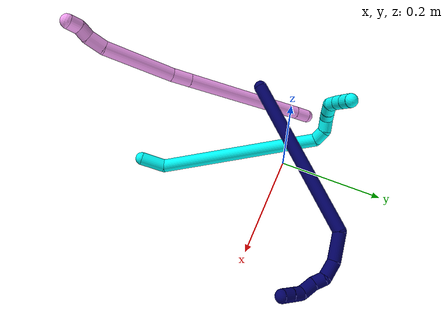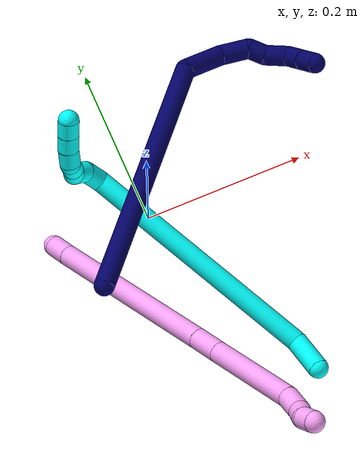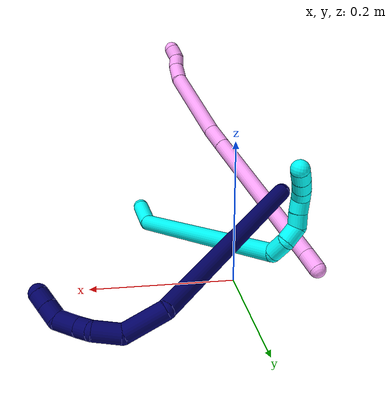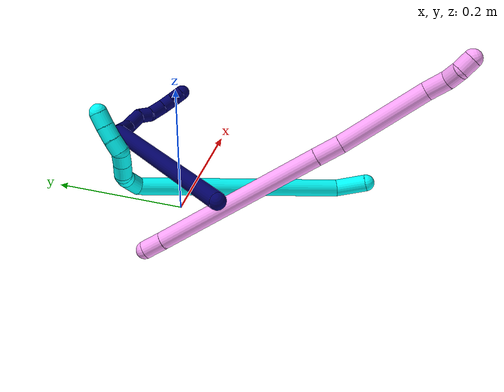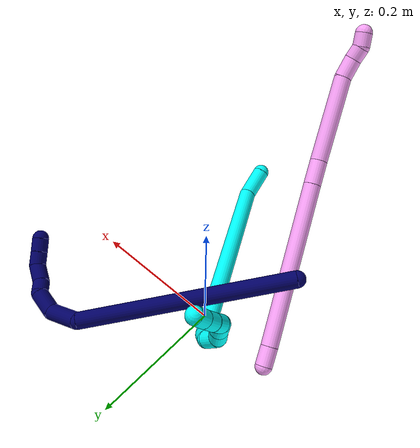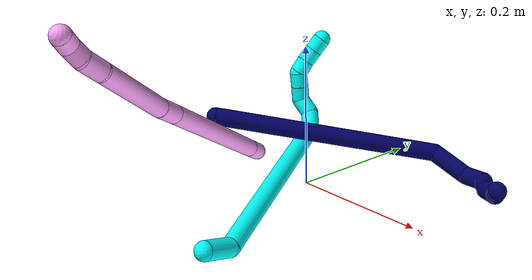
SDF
<sdf version="1.7">
 <world name="default">
  <model name="photoneo_s_sensor">
   <static>1</static>
   <pose>0 0 2 1.57079 1.57079 3.14159</pose>
   <link name="link">
    <inertial><mass>0.1</mass></inertial>
    <sensor name="sensor" type="depth">
     <update_rate>30</update_rate>
     <camera>
      <horizontal_fov>1.22</horizontal_fov>
      <image><width>1920</width><height>1200</height><format>B8G8R8</format></image>
      <clip><near>0.1</near><far>4</far></clip>
      <depth_camera><output>points</output></depth_camera>
     </camera>
     <plugin name="camera_plugin" filename="libgazebo_ros_depth_camera.so">
      <baseline>0.2</baseline>
      <alwaysOn>1</alwaysOn>
      <updateRate>0.0</updateRate>
      <cameraName>camera_ir</cameraName>
      <imageTopicName>/camera/color/image_raw</imageTopicName>
      <cameraInfoTopicName>/camera/color/camera_info</cameraInfoTopicName>
      <depthImageTopicName>/camera/depth/image_raw</depthImageTopicName>
      <depthImageCameraInfoTopicName>/camera/depth/camera_info</depthImageCameraInfoTopicName>
      <pointCloudTopicName>/camera/depth/points</pointCloudTopicName>
      <frameName>fr_optical</frameName>
      <pointCloudCutoff>0.1</pointCloudCutoff>
      <pointCloudCutoffMax>2.0</pointCloudCutoffMax>
      <distortionK1>0</distortionK1>
      <distortionK2>0</distortionK2>
      <distortionK3>0</distortionK3>
      <distortionT1>0</distortionT1>
      <distortionT2>0</distortionT2>
      <CxPrime>0</CxPrime>
      <Cx>0</Cx>
      <Cy>0</Cy>
      <focalLength>0</focalLength>
      <hackBaseline>0</hackBaseline>
     </plugin>
    </sensor>
   </link>
  </model>
  <model name="bin">
   <static>1</static>
   <link name="bottom">
    <collision name="collision-bottom">
     <pose>0 0 -0.01 0 -0 0</pose>
     <geometry><box><size>0.8 0.6 0.02</size></box></geometry>
     <surface>
      <friction><ode><mu>100</mu><mu2>100</mu2></ode></friction>
      <contact><collide_bitmask>65535</collide_bitmask></contact>
     </surface>
    </collision>
   </link>
   <link name="west_wall">
    <collision name="collision-west_wall">
     <pose>-0.41 0 0.1 0 -0 0</pose>
     <geometry><box><size>0.02 0.6 0.2</size></box></geometry>
     <surface>
      <friction><ode><mu>100</mu><mu2>100</mu2></ode></friction>
      <contact><collide_bitmask>65535</collide_bitmask></contact>
     </surface>
    </collision>
   </link>
   <link name="east_wall">
    <collision name="collision-east_wall">
     <pose>0.41 0 0.1 0 -0 0</pose>
     <geometry><box><size>0.02 0.6 0.2</size></box></geometry>
     <surface>
      <friction><ode><mu>100</mu><mu2>100</mu2></ode></friction>
      <contact><collide_bitmask>65535</collide_bitmask></contact>
     </surface>
    </collision>
   </link>
   <link name="south_wall">
    <collision name="collision-south_wall">
     <pose>0 -0.31 0.1 0 -0 0</pose>
     <geometry><box><size>0.8 0.02 0.2</size></box></geometry>
     <surface>
      <friction><ode><mu>100</mu><mu2>100</mu2></ode></friction>
      <contact><collide_bitmask>65535</collide_bitmask></contact>
     </surface>
    </collision>
   </link>
   <link name="north_wall">
    <collision name="collision-north_wall">
     <pose>0 0.31 0.1 0 -0 0</pose>
     <geometry><box><size>0.8 0.02 0.2</size></box></geometry>
     <surface>
      <friction><ode><mu>100</mu><mu2>100</mu2></ode></friction>
      <contact><collide_bitmask>65535</collide_bitmask></contact>
     </surface>
    </collision>
   </link>
  </model>
  <model name="3">
   <static>0</static>
   <link name="3">
    <collision name="collision-cylinder-e_1_1_4">
     <pose>-0.006111 0.021664 -0.004927 -1.79442 -0.268433 0.335196</pose>
     <geometry><cylinder><radius>0.0125</radius><length>0.046085</length></cylinder></geometry>
     <surface>
      <friction><ode><mu>1.16</mu><mu2>1.16</mu2><slip1>0</slip1><slip2>0</slip2></ode></friction>
      <contact><ode><kp>1e+06</kp><kd>1</kd><max_vel>0</max_vel><min_depth>0.001</min_depth></ode></contact>
     </surface>
    </collision>
    <visual name="visual-cylinder-e_1_1_4">
     <pose>-0.006111 0.021664 -0.004927 -1.79442 -0.268433 0.335196</pose>
     <geometry><cylinder><radius>0.0125</radius><length>0.046085</length></cylinder></geometry>
     <material><ambient>0.003922 1 0.996078 1</ambient></material>
    </visual>
    <collision name="collision-cylinder-e_2_4_5">
     <pose>-0.085001 0.169545 0.03139 -1.25497 -0.501376 0.367261</pose>
     <geometry><cylinder><radius>0.0125</radius><length>0.302843</length></cylinder></geometry>
     <surface>
      <friction><ode><mu>1.16</mu><mu2>1.16</mu2><slip1>0</slip1><slip2>0</slip2></ode></friction>
      <contact><ode><kp>1e+06</kp><kd>1</kd><max_vel>0</max_vel><min_depth>0.001</min_depth></ode></contact>
     </surface>
    </collision>
    <visual name="visual-cylinder-e_2_4_5">
     <pose>-0.085001 0.169545 0.03139 -1.25497 -0.501376 0.367261</pose>
     <geometry><cylinder><radius>0.0125</radius><length>0.302843</length></cylinder></geometry>
     <material><ambient>0.003922 1 0.996078 1</ambient></material>
    </visual>
    <collision name="collision-cylinder-e_3_5_6">
     <pose>-0.163051 0.300483 0.083798 -0.400087 -0.41027 0.084321</pose>
     <geometry><cylinder><radius>0.0125</radius><length>0.026436</length></cylinder></geometry>
     <surface>
      <friction><ode><mu>1.16</mu><mu2>1.16</mu2><slip1>0</slip1><slip2>0</slip2></ode></friction>
      <contact><ode><kp>1e+06</kp><kd>1</kd><max_vel>0</max_vel><min_depth>0.001</min_depth></ode></contact>
     </surface>
    </collision>
    <visual name="visual-cylinder-e_3_5_6">
     <pose>-0.163051 0.300483 0.083798 -0.400087 -0.41027 0.084321</pose>
     <geometry><cylinder><radius>0.0125</radius><length>0.026436</length></cylinder></geometry>
     <material><ambient>0.003922 1 0.996078 1</ambient></material>
    </visual>
    <collision name="collision-cylinder-e_4_6_7">
     <pose>-0.174415 0.302516 0.105069 0.259985 -0.527387 -0.07056</pose>
     <geometry><cylinder><radius>0.0125</radius><length>0.024208</length></cylinder></geometry>
     <surface>
      <friction><ode><mu>1.16</mu><mu2>1.16</mu2><slip1>0</slip1><slip2>0</slip2></ode></friction>
      <contact><ode><kp>1e+06</kp><kd>1</kd><max_vel>0</max_vel><min_depth>0.001</min_depth></ode></contact>
     </surface>
    </collision>
    <visual name="visual-cylinder-e_4_6_7">
     <pose>-0.174415 0.302516 0.105069 0.259985 -0.527387 -0.07056</pose>
     <geometry><cylinder><radius>0.0125</radius><length>0.024208</length></cylinder></geometry>
     <material><ambient>0.003922 1 0.996078 1</ambient></material>
    </visual>
    <collision name="collision-cylinder-e_5_7_8">
     <pose>-0.179202 0.299089 0.125092 0.074293 0.130461 0.004855</pose>
     <geometry><cylinder><radius>0.0125</radius><length>0.020054</length></cylinder></geometry>
     <surface>
      <friction><ode><mu>1.16</mu><mu2>1.16</mu2><slip1>0</slip1><slip2>0</slip2></ode></friction>
      <contact><ode><kp>1e+06</kp><kd>1</kd><max_vel>0</max_vel><min_depth>0.001</min_depth></ode></contact>
     </surface>
    </collision>
    <visual name="visual-cylinder-e_5_7_8">
     <pose>-0.179202 0.299089 0.125092 0.074293 0.130461 0.004855</pose>
     <geometry><cylinder><radius>0.0125</radius><length>0.020054</length></cylinder></geometry>
     <material><ambient>0.003922 1 0.996078 1</ambient></material>
    </visual>
    <collision name="collision-cylinder-e_6_8_9">
     <pose>-0.177479 0.297739 0.145123 0.060454 0.041287 0.001249</pose>
     <geometry><cylinder><radius>0.0125</radius><length>0.020288</length></cylinder></geometry>
     <surface>
      <friction><ode><mu>1.16</mu><mu2>1.16</mu2><slip1>0</slip1><slip2>0</slip2></ode></friction>
      <contact><ode><kp>1e+06</kp><kd>1</kd><max_vel>0</max_vel><min_depth>0.001</min_depth></ode></contact>
     </surface>
    </collision>
    <visual name="visual-cylinder-e_6_8_9">
     <pose>-0.177479 0.297739 0.145123 0.060454 0.041287 0.001249</pose>
     <geometry><cylinder><radius>0.0125</radius><length>0.020288</length></cylinder></geometry>
     <material><ambient>0.003922 1 0.996078 1</ambient></material>
    </visual>
    <collision name="collision-cylinder-e_7_9_10">
     <pose>-0.174476 0.302792 0.163095 -0.624821 0.260783 -0.08466</pose>
     <geometry><cylinder><radius>0.0125</radius><length>0.02005</length></cylinder></geometry>
     <surface>
      <friction><ode><mu>1.16</mu><mu2>1.16</mu2><slip1>0</slip1><slip2>0</slip2></ode></friction>
      <contact><ode><kp>1e+06</kp><kd>1</kd><max_vel>0</max_vel><min_depth>0.001</min_depth></ode></contact>
     </surface>
    </collision>
    <visual name="visual-cylinder-e_7_9_10">
     <pose>-0.174476 0.302792 0.163095 -0.624821 0.260783 -0.08466</pose>
     <geometry><cylinder><radius>0.0125</radius><length>0.02005</length></cylinder></geometry>
     <material><ambient>0.003922 1 0.996078 1</ambient></material>
    </visual>
    <collision name="collision-cylinder-e_8_10_11">
     <pose>-0.16836 0.313963 0.178527 -0.628349 0.36058 -0.118314</pose>
     <geometry><cylinder><radius>0.0125</radius><length>0.020018</length></cylinder></geometry>
     <surface>
      <friction><ode><mu>1.16</mu><mu2>1.16</mu2><slip1>0</slip1><slip2>0</slip2></ode></friction>
      <contact><ode><kp>1e+06</kp><kd>1</kd><max_vel>0</max_vel><min_depth>0.001</min_depth></ode></contact>
     </surface>
    </collision>
    <visual name="visual-cylinder-e_8_10_11">
     <pose>-0.16836 0.313963 0.178527 -0.628349 0.36058 -0.118314</pose>
     <geometry><cylinder><radius>0.0125</radius><length>0.020018</length></cylinder></geometry>
     <material><ambient>0.003922 1 0.996078 1</ambient></material>
    </visual>
    <collision name="collision-cylinder-e_9_11_2">
     <pose>-0.160944 0.324743 0.193672 -0.60876 0.398472 -0.12669</pose>
     <geometry><cylinder><radius>0.0125</radius><length>0.020019</length></cylinder></geometry>
     <surface>
      <friction><ode><mu>1.16</mu><mu2>1.16</mu2><slip1>0</slip1><slip2>0</slip2></ode></friction>
      <contact><ode><kp>1e+06</kp><kd>1</kd><max_vel>0</max_vel><min_depth>0.001</min_depth></ode></contact>
     </surface>
    </collision>
    <visual name="visual-cylinder-e_9_11_2">
     <pose>-0.160944 0.324743 0.193672 -0.60876 0.398472 -0.12669</pose>
     <geometry><cylinder><radius>0.0125</radius><length>0.020019</length></cylinder></geometry>
     <material><ambient>0.003922 1 0.996078 1</ambient></material>
    </visual>
    <collision name="collision-sphere-2">
     <pose>-0.157061 0.330019 0.20124 0 -0 0</pose>
     <geometry><sphere><radius>0.0125</radius></sphere></geometry>
     <surface>
      <friction><ode><mu>1.16</mu><mu2>1.16</mu2><slip1>0</slip1><slip2>0</slip2></ode></friction>
      <contact><ode><kp>1e+06</kp><kd>1</kd><max_vel>0</max_vel><min_depth>0.001</min_depth></ode></contact>
     </surface>
    </collision>
    <visual name="visual-sphere-2">
     <pose>-0.157061 0.330019 0.20124 0 -0 0</pose>
     <geometry><sphere><radius>0.0125</radius></sphere></geometry>
     <material><ambient>0.003922 1 0.996078 1</ambient></material>
    </visual>
    <collision name="collision-sphere-11">
     <pose>-0.164828 0.319468 0.186104 0 -0 0</pose>
     <geometry><sphere><radius>0.0125</radius></sphere></geometry>
     <surface>
      <friction><ode><mu>1.16</mu><mu2>1.16</mu2><slip1>0</slip1><slip2>0</slip2></ode></friction>
      <contact><ode><kp>1e+06</kp><kd>1</kd><max_vel>0</max_vel><min_depth>0.001</min_depth></ode></contact>
     </surface>
    </collision>
    <visual name="visual-sphere-11">
     <pose>-0.164828 0.319468 0.186104 0 -0 0</pose>
     <geometry><sphere><radius>0.0125</radius></sphere></geometry>
     <material><ambient>0.003922 1 0.996078 1</ambient></material>
    </visual>
    <collision name="collision-sphere-10">
     <pose>-0.171891 0.308458 0.170951 0 -0 0</pose>
     <geometry><sphere><radius>0.0125</radius></sphere></geometry>
     <surface>
      <friction><ode><mu>1.16</mu><mu2>1.16</mu2><slip1>0</slip1><slip2>0</slip2></ode></friction>
      <contact><ode><kp>1e+06</kp><kd>1</kd><max_vel>0</max_vel><min_depth>0.001</min_depth></ode></contact>
     </surface>
    </collision>
    <visual name="visual-sphere-10">
     <pose>-0.171891 0.308458 0.170951 0 -0 0</pose>
     <geometry><sphere><radius>0.0125</radius></sphere></geometry>
     <material><ambient>0.003922 1 0.996078 1</ambient></material>
    </visual>
    <collision name="collision-sphere-9">
     <pose>-0.17706 0.297126 0.155239 0 -0 0</pose>
     <geometry><sphere><radius>0.0125</radius></sphere></geometry>
     <surface>
      <friction><ode><mu>1.16</mu><mu2>1.16</mu2><slip1>0</slip1><slip2>0</slip2></ode></friction>
      <contact><ode><kp>1e+06</kp><kd>1</kd><max_vel>0</max_vel><min_depth>0.001</min_depth></ode></contact>
     </surface>
    </collision>
    <visual name="visual-sphere-9">
     <pose>-0.17706 0.297126 0.155239 0 -0 0</pose>
     <geometry><sphere><radius>0.0125</radius></sphere></geometry>
     <material><ambient>0.003922 1 0.996078 1</ambient></material>
    </visual>
    <collision name="collision-sphere-4">
     <pose>-0.012223 0.043328 -0.009854 0 -0 0</pose>
     <geometry><sphere><radius>0.0125</radius></sphere></geometry>
     <surface>
      <friction><ode><mu>1.16</mu><mu2>1.16</mu2><slip1>0</slip1><slip2>0</slip2></ode></friction>
      <contact><ode><kp>1e+06</kp><kd>1</kd><max_vel>0</max_vel><min_depth>0.001</min_depth></ode></contact>
     </surface>
    </collision>
    <visual name="visual-sphere-4">
     <pose>-0.012223 0.043328 -0.009854 0 -0 0</pose>
     <geometry><sphere><radius>0.0125</radius></sphere></geometry>
     <material><ambient>0.003922 1 0.996078 1</ambient></material>
    </visual>
    <collision name="collision-sphere-1">
     <geometry><sphere><radius>0.0125</radius></sphere></geometry>
     <surface>
      <friction><ode><mu>1.16</mu><mu2>1.16</mu2><slip1>0</slip1><slip2>0</slip2></ode></friction>
      <contact><ode><kp>1e+06</kp><kd>1</kd><max_vel>0</max_vel><min_depth>0.001</min_depth></ode></contact>
     </surface>
    </collision>
    <visual name="visual-sphere-1">
     <geometry><sphere><radius>0.0125</radius></sphere></geometry>
     <material><ambient>0.003922 1 0.996078 1</ambient></material>
    </visual>
    <collision name="collision-sphere-8">
     <pose>-0.177898 0.298351 0.135006 0 -0 0</pose>
     <geometry><sphere><radius>0.0125</radius></sphere></geometry>
     <surface>
      <friction><ode><mu>1.16</mu><mu2>1.16</mu2><slip1>0</slip1><slip2>0</slip2></ode></friction>
      <contact><ode><kp>1e+06</kp><kd>1</kd><max_vel>0</max_vel><min_depth>0.001</min_depth></ode></contact>
     </surface>
    </collision>
    <visual name="visual-sphere-8">
     <pose>-0.177898 0.298351 0.135006 0 -0 0</pose>
     <geometry><sphere><radius>0.0125</radius></sphere></geometry>
     <material><ambient>0.003922 1 0.996078 1</ambient></material>
    </visual>
    <collision name="collision-sphere-5">
     <pose>-0.157779 0.295762 0.072634 0 -0 0</pose>
     <geometry><sphere><radius>0.0125</radius></sphere></geometry>
     <surface>
      <friction><ode><mu>1.16</mu><mu2>1.16</mu2><slip1>0</slip1><slip2>0</slip2></ode></friction>
      <contact><ode><kp>1e+06</kp><kd>1</kd><max_vel>0</max_vel><min_depth>0.001</min_depth></ode></contact>
     </surface>
    </collision>
    <visual name="visual-sphere-5">
     <pose>-0.157779 0.295762 0.072634 0 -0 0</pose>
     <geometry><sphere><radius>0.0125</radius></sphere></geometry>
     <material><ambient>0.003922 1 0.996078 1</ambient></material>
    </visual>
    <collision name="collision-sphere-6">
     <pose>-0.168323 0.305204 0.094961 0 -0 0</pose>
     <geometry><sphere><radius>0.0125</radius></sphere></geometry>
     <surface>
      <friction><ode><mu>1.16</mu><mu2>1.16</mu2><slip1>0</slip1><slip2>0</slip2></ode></friction>
      <contact><ode><kp>1e+06</kp><kd>1</kd><max_vel>0</max_vel><min_depth>0.001</min_depth></ode></contact>
     </surface>
    </collision>
    <visual name="visual-sphere-6">
     <pose>-0.168323 0.305204 0.094961 0 -0 0</pose>
     <geometry><sphere><radius>0.0125</radius></sphere></geometry>
     <material><ambient>0.003922 1 0.996078 1</ambient></material>
    </visual>
    <collision name="collision-sphere-7">
     <pose>-0.180507 0.299827 0.115178 0 -0 0</pose>
     <geometry><sphere><radius>0.0125</radius></sphere></geometry>
     <surface>
      <friction><ode><mu>1.16</mu><mu2>1.16</mu2><slip1>0</slip1><slip2>0</slip2></ode></friction>
      <contact><ode><kp>1e+06</kp><kd>1</kd><max_vel>0</max_vel><min_depth>0.001</min_depth></ode></contact>
     </surface>
    </collision>
    <visual name="visual-sphere-7">
     <pose>-0.180507 0.299827 0.115178 0 -0 0</pose>
     <geometry><sphere><radius>0.0125</radius></sphere></geometry>
     <material><ambient>0.003922 1 0.996078 1</ambient></material>
    </visual>
    <inertial>
     <pose>-0.103682 0.197012 0.060423 0 -0 0</pose>
     <mass>0.5</mass>
     <inertia>
      <ixx>0.002647</ixx>
      <ixy>0</ixy>
      <ixz>0</ixz>
      <iyy>0.001827</iyy>
      <iyz>0</iyz>
      <izz>-0.000814</izz>
     </inertia>
    </inertial>
   </link>
   <pose>0.108846 -0.258833 0.024813 -0.035286 -0.173302 -0.050997</pose>
  </model>
  <model name="4">
   <static>0</static>
   <link name="4">
    <collision name="collision-cylinder-e_1_1_4">
     <pose>0.000991 -0.002826 0.013912 0.200398 0.069666 0.007007</pose>
     <geometry><cylinder><radius>0.0125</radius><length>0.028461</length></cylinder></geometry>
     <surface>
      <friction><ode><mu>1.16</mu><mu2>1.16</mu2><slip1>0</slip1><slip2>0</slip2></ode></friction>
      <contact><ode><kp>1e+06</kp><kd>1</kd><max_vel>0</max_vel><min_depth>0.001</min_depth></ode></contact>
     </surface>
    </collision>
    <visual name="visual-cylinder-e_1_1_4">
     <pose>0.000991 -0.002826 0.013912 0.200398 0.069666 0.007007</pose>
     <geometry><cylinder><radius>0.0125</radius><length>0.028461</length></cylinder></geometry>
     <material><ambient>1 0.65098 0.996078 1</ambient></material>
    </visual>
    <collision name="collision-cylinder-e_2_4_5">
     <pose>0.011277 -0.032219 0.14381 0.225172 0.077968 0.00882</pose>
     <geometry><cylinder><radius>0.0125</radius><length>0.238705</length></cylinder></geometry>
     <surface>
      <friction><ode><mu>1.16</mu><mu2>1.16</mu2><slip1>0</slip1><slip2>0</slip2></ode></friction>
      <contact><ode><kp>1e+06</kp><kd>1</kd><max_vel>0</max_vel><min_depth>0.001</min_depth></ode></contact>
     </surface>
    </collision>
    <visual name="visual-cylinder-e_2_4_5">
     <pose>0.011277 -0.032219 0.14381 0.225172 0.077968 0.00882</pose>
     <geometry><cylinder><radius>0.0125</radius><length>0.238705</length></cylinder></geometry>
     <material><ambient>1 0.65098 0.996078 1</ambient></material>
    </visual>
    <collision name="collision-cylinder-e_3_5_6">
     <pose>0.021858 -0.062683 0.277389 0.217967 0.071148 0.007788</pose>
     <geometry><cylinder><radius>0.0125</radius><length>0.036132</length></cylinder></geometry>
     <surface>
      <friction><ode><mu>1.16</mu><mu2>1.16</mu2><slip1>0</slip1><slip2>0</slip2></ode></friction>
      <contact><ode><kp>1e+06</kp><kd>1</kd><max_vel>0</max_vel><min_depth>0.001</min_depth></ode></contact>
     </surface>
    </collision>
    <visual name="visual-cylinder-e_3_5_6">
     <pose>0.021858 -0.062683 0.277389 0.217967 0.071148 0.007788</pose>
     <geometry><cylinder><radius>0.0125</radius><length>0.036132</length></cylinder></geometry>
     <material><ambient>1 0.65098 0.996078 1</ambient></material>
    </visual>
    <collision name="collision-cylinder-e_4_6_7">
     <pose>0.032882 -0.077482 0.356589 0.175145 0.154441 0.013586</pose>
     <geometry><cylinder><radius>0.0125</radius><length>0.126634</length></cylinder></geometry>
     <surface>
      <friction><ode><mu>1.16</mu><mu2>1.16</mu2><slip1>0</slip1><slip2>0</slip2></ode></friction>
      <contact><ode><kp>1e+06</kp><kd>1</kd><max_vel>0</max_vel><min_depth>0.001</min_depth></ode></contact>
     </surface>
    </collision>
    <visual name="visual-cylinder-e_4_6_7">
     <pose>0.032882 -0.077482 0.356589 0.175145 0.154441 0.013586</pose>
     <geometry><cylinder><radius>0.0125</radius><length>0.126634</length></cylinder></geometry>
     <material><ambient>1 0.65098 0.996078 1</ambient></material>
    </visual>
    <collision name="collision-cylinder-e_5_7_8">
     <pose>0.045166 -0.087261 0.432945 -0.075944 0.170285 -0.006485</pose>
     <geometry><cylinder><radius>0.0125</radius><length>0.030018</length></cylinder></geometry>
     <surface>
      <friction><ode><mu>1.16</mu><mu2>1.16</mu2><slip1>0</slip1><slip2>0</slip2></ode></friction>
      <contact><ode><kp>1e+06</kp><kd>1</kd><max_vel>0</max_vel><min_depth>0.001</min_depth></ode></contact>
     </surface>
    </collision>
    <visual name="visual-cylinder-e_5_7_8">
     <pose>0.045166 -0.087261 0.432945 -0.075944 0.170285 -0.006485</pose>
     <geometry><cylinder><radius>0.0125</radius><length>0.030018</length></cylinder></geometry>
     <material><ambient>1 0.65098 0.996078 1</ambient></material>
    </visual>
    <collision name="collision-cylinder-e_6_8_9">
     <pose>0.051505 -0.083493 0.456583 -0.289318 0.388526 -0.057306</pose>
     <geometry><cylinder><radius>0.0125</radius><length>0.020042</length></cylinder></geometry>
     <surface>
      <friction><ode><mu>1.16</mu><mu2>1.16</mu2><slip1>0</slip1><slip2>0</slip2></ode></friction>
      <contact><ode><kp>1e+06</kp><kd>1</kd><max_vel>0</max_vel><min_depth>0.001</min_depth></ode></contact>
     </surface>
    </collision>
    <visual name="visual-cylinder-e_6_8_9">
     <pose>0.051505 -0.083493 0.456583 -0.289318 0.388526 -0.057306</pose>
     <geometry><cylinder><radius>0.0125</radius><length>0.020042</length></cylinder></geometry>
     <material><ambient>1 0.65098 0.996078 1</ambient></material>
    </visual>
    <collision name="collision-cylinder-e_7_9_2">
     <pose>0.058998 -0.082677 0.474586 0.198177 0.378411 0.03807</pose>
     <geometry><cylinder><radius>0.0125</radius><length>0.020009</length></cylinder></geometry>
     <surface>
      <friction><ode><mu>1.16</mu><mu2>1.16</mu2><slip1>0</slip1><slip2>0</slip2></ode></friction>
      <contact><ode><kp>1e+06</kp><kd>1</kd><max_vel>0</max_vel><min_depth>0.001</min_depth></ode></contact>
     </surface>
    </collision>
    <visual name="visual-cylinder-e_7_9_2">
     <pose>0.058998 -0.082677 0.474586 0.198177 0.378411 0.03807</pose>
     <geometry><cylinder><radius>0.0125</radius><length>0.020009</length></cylinder></geometry>
     <material><ambient>1 0.65098 0.996078 1</ambient></material>
    </visual>
    <collision name="collision-sphere-2">
     <pose>0.062694 -0.084507 0.483701 0 -0 0</pose>
     <geometry><sphere><radius>0.0125</radius></sphere></geometry>
     <surface>
      <friction><ode><mu>1.16</mu><mu2>1.16</mu2><slip1>0</slip1><slip2>0</slip2></ode></friction>
      <contact><ode><kp>1e+06</kp><kd>1</kd><max_vel>0</max_vel><min_depth>0.001</min_depth></ode></contact>
     </surface>
    </collision>
    <visual name="visual-sphere-2">
     <pose>0.062694 -0.084507 0.483701 0 -0 0</pose>
     <geometry><sphere><radius>0.0125</radius></sphere></geometry>
     <material><ambient>1 0.65098 0.996078 1</ambient></material>
    </visual>
    <collision name="collision-sphere-9">
     <pose>0.055301 -0.080847 0.465472 0 -0 0</pose>
     <geometry><sphere><radius>0.0125</radius></sphere></geometry>
     <surface>
      <friction><ode><mu>1.16</mu><mu2>1.16</mu2><slip1>0</slip1><slip2>0</slip2></ode></friction>
      <contact><ode><kp>1e+06</kp><kd>1</kd><max_vel>0</max_vel><min_depth>0.001</min_depth></ode></contact>
     </surface>
    </collision>
    <visual name="visual-sphere-9">
     <pose>0.055301 -0.080847 0.465472 0 -0 0</pose>
     <geometry><sphere><radius>0.0125</radius></sphere></geometry>
     <material><ambient>1 0.65098 0.996078 1</ambient></material>
    </visual>
    <collision name="collision-sphere-4">
     <pose>0.001981 -0.005652 0.027824 0 -0 0</pose>
     <geometry><sphere><radius>0.0125</radius></sphere></geometry>
     <surface>
      <friction><ode><mu>1.16</mu><mu2>1.16</mu2><slip1>0</slip1><slip2>0</slip2></ode></friction>
      <contact><ode><kp>1e+06</kp><kd>1</kd><max_vel>0</max_vel><min_depth>0.001</min_depth></ode></contact>
     </surface>
    </collision>
    <visual name="visual-sphere-4">
     <pose>0.001981 -0.005652 0.027824 0 -0 0</pose>
     <geometry><sphere><radius>0.0125</radius></sphere></geometry>
     <material><ambient>1 0.65098 0.996078 1</ambient></material>
    </visual>
    <collision name="collision-sphere-1">
     <geometry><sphere><radius>0.0125</radius></sphere></geometry>
     <surface>
      <friction><ode><mu>1.16</mu><mu2>1.16</mu2><slip1>0</slip1><slip2>0</slip2></ode></friction>
      <contact><ode><kp>1e+06</kp><kd>1</kd><max_vel>0</max_vel><min_depth>0.001</min_depth></ode></contact>
     </surface>
    </collision>
    <visual name="visual-sphere-1">
     <geometry><sphere><radius>0.0125</radius></sphere></geometry>
     <material><ambient>1 0.65098 0.996078 1</ambient></material>
    </visual>
    <collision name="collision-sphere-8">
     <pose>0.047709 -0.086139 0.447694 0 -0 0</pose>
     <geometry><sphere><radius>0.0125</radius></sphere></geometry>
     <surface>
      <friction><ode><mu>1.16</mu><mu2>1.16</mu2><slip1>0</slip1><slip2>0</slip2></ode></friction>
      <contact><ode><kp>1e+06</kp><kd>1</kd><max_vel>0</max_vel><min_depth>0.001</min_depth></ode></contact>
     </surface>
    </collision>
    <visual name="visual-sphere-8">
     <pose>0.047709 -0.086139 0.447694 0 -0 0</pose>
     <geometry><sphere><radius>0.0125</radius></sphere></geometry>
     <material><ambient>1 0.65098 0.996078 1</ambient></material>
    </visual>
    <collision name="collision-sphere-5">
     <pose>0.020574 -0.058786 0.259796 0 -0 0</pose>
     <geometry><sphere><radius>0.0125</radius></sphere></geometry>
     <surface>
      <friction><ode><mu>1.16</mu><mu2>1.16</mu2><slip1>0</slip1><slip2>0</slip2></ode></friction>
      <contact><ode><kp>1e+06</kp><kd>1</kd><max_vel>0</max_vel><min_depth>0.001</min_depth></ode></contact>
     </surface>
    </collision>
    <visual name="visual-sphere-5">
     <pose>0.020574 -0.058786 0.259796 0 -0 0</pose>
     <geometry><sphere><radius>0.0125</radius></sphere></geometry>
     <material><ambient>1 0.65098 0.996078 1</ambient></material>
    </visual>
    <collision name="collision-sphere-6">
     <pose>0.023142 -0.06658 0.294983 0 -0 0</pose>
     <geometry><sphere><radius>0.0125</radius></sphere></geometry>
     <surface>
      <friction><ode><mu>1.16</mu><mu2>1.16</mu2><slip1>0</slip1><slip2>0</slip2></ode></friction>
      <contact><ode><kp>1e+06</kp><kd>1</kd><max_vel>0</max_vel><min_depth>0.001</min_depth></ode></contact>
     </surface>
    </collision>
    <visual name="visual-sphere-6">
     <pose>0.023142 -0.06658 0.294983 0 -0 0</pose>
     <geometry><sphere><radius>0.0125</radius></sphere></geometry>
     <material><ambient>1 0.65098 0.996078 1</ambient></material>
    </visual>
    <collision name="collision-sphere-7">
     <pose>0.042622 -0.088383 0.418195 0 -0 0</pose>
     <geometry><sphere><radius>0.0125</radius></sphere></geometry>
     <surface>
      <friction><ode><mu>1.16</mu><mu2>1.16</mu2><slip1>0</slip1><slip2>0</slip2></ode></friction>
      <contact><ode><kp>1e+06</kp><kd>1</kd><max_vel>0</max_vel><min_depth>0.001</min_depth></ode></contact>
     </surface>
    </collision>
    <visual name="visual-sphere-7">
     <pose>0.042622 -0.088383 0.418195 0 -0 0</pose>
     <geometry><sphere><radius>0.0125</radius></sphere></geometry>
     <material><ambient>1 0.65098 0.996078 1</ambient></material>
    </visual>
    <inertial>
     <pose>0.022485 -0.05159 0.243091 0 -0 0</pose>
     <mass>0.5</mass>
     <inertia>
      <ixx>0.001343</ixx>
      <ixy>0</ixy>
      <ixz>0</ixz>
      <iyy>0.001306</iyy>
      <iyz>0</iyz>
      <izz>0.000205</izz>
     </inertia>
    </inertial>
   </link>
   <pose>-0.119152 0.008434 0.012425 0.284269 -1.05704 1.41065</pose>
  </model>
  <model name="7">
   <static>0</static>
   <link name="7">
    <collision name="collision-cylinder-e_1_1_4">
     <pose>0.085034 0.114713 -0.06727 -2.10117 0.568914 -0.943885</pose>
     <geometry><cylinder><radius>0.0125</radius><length>0.315689</length></cylinder></geometry>
     <surface>
      <friction><ode><mu>1.16</mu><mu2>1.16</mu2><slip1>0</slip1><slip2>0</slip2></ode></friction>
      <contact><ode><kp>1e+06</kp><kd>1</kd><max_vel>0</max_vel><min_depth>0.001</min_depth></ode></contact>
     </surface>
    </collision>
    <visual name="visual-cylinder-e_1_1_4">
     <pose>0.085034 0.114713 -0.06727 -2.10117 0.568914 -0.943885</pose>
     <geometry><cylinder><radius>0.0125</radius><length>0.315689</length></cylinder></geometry>
     <material><ambient>0.003922 0 0.403922 1</ambient></material>
    </visual>
    <collision name="collision-cylinder-e_2_4_5">
     <pose>0.188604 0.233205 -0.154963 -2.95862 0.728634 -2.6694</pose>
     <geometry><cylinder><radius>0.0125</radius><length>0.055679</length></cylinder></geometry>
     <surface>
      <friction><ode><mu>1.16</mu><mu2>1.16</mu2><slip1>0</slip1><slip2>0</slip2></ode></friction>
      <contact><ode><kp>1e+06</kp><kd>1</kd><max_vel>0</max_vel><min_depth>0.001</min_depth></ode></contact>
     </surface>
    </collision>
    <visual name="visual-cylinder-e_2_4_5">
     <pose>0.188604 0.233205 -0.154963 -2.95862 0.728634 -2.6694</pose>
     <geometry><cylinder><radius>0.0125</radius><length>0.055679</length></cylinder></geometry>
     <material><ambient>0.003922 0 0.403922 1</ambient></material>
    </visual>
    <collision name="collision-cylinder-e_3_5_6">
     <pose>0.223874 0.23311 -0.18111 2.54655 1.17912 2.28198</pose>
     <geometry><cylinder><radius>0.0125</radius><length>0.036208</length></cylinder></geometry>
     <surface>
      <friction><ode><mu>1.16</mu><mu2>1.16</mu2><slip1>0</slip1><slip2>0</slip2></ode></friction>
      <contact><ode><kp>1e+06</kp><kd>1</kd><max_vel>0</max_vel><min_depth>0.001</min_depth></ode></contact>
     </surface>
    </collision>
    <visual name="visual-cylinder-e_3_5_6">
     <pose>0.223874 0.23311 -0.18111 2.54655 1.17912 2.28198</pose>
     <geometry><cylinder><radius>0.0125</radius><length>0.036208</length></cylinder></geometry>
     <material><ambient>0.003922 0 0.403922 1</ambient></material>
    </visual>
    <collision name="collision-cylinder-e_4_6_7">
     <pose>0.246721 0.221527 -0.191035 2.0698 0.60826 0.972397</pose>
     <geometry><cylinder><radius>0.0125</radius><length>0.021398</length></cylinder></geometry>
     <surface>
      <friction><ode><mu>1.16</mu><mu2>1.16</mu2><slip1>0</slip1><slip2>0</slip2></ode></friction>
      <contact><ode><kp>1e+06</kp><kd>1</kd><max_vel>0</max_vel><min_depth>0.001</min_depth></ode></contact>
     </surface>
    </collision>
    <visual name="visual-cylinder-e_4_6_7">
     <pose>0.246721 0.221527 -0.191035 2.0698 0.60826 0.972397</pose>
     <geometry><cylinder><radius>0.0125</radius><length>0.021398</length></cylinder></geometry>
     <material><ambient>0.003922 0 0.403922 1</ambient></material>
    </visual>
    <collision name="collision-cylinder-e_5_7_8">
     <pose>0.264849 0.206422 -0.198518 1.98831 0.978123 1.37157</pose>
     <geometry><cylinder><radius>0.0125</radius><length>0.028969</length></cylinder></geometry>
     <surface>
      <friction><ode><mu>1.16</mu><mu2>1.16</mu2><slip1>0</slip1><slip2>0</slip2></ode></friction>
      <contact><ode><kp>1e+06</kp><kd>1</kd><max_vel>0</max_vel><min_depth>0.001</min_depth></ode></contact>
     </surface>
    </collision>
    <visual name="visual-cylinder-e_5_7_8">
     <pose>0.264849 0.206422 -0.198518 1.98831 0.978123 1.37157</pose>
     <geometry><cylinder><radius>0.0125</radius><length>0.028969</length></cylinder></geometry>
     <material><ambient>0.003922 0 0.403922 1</ambient></material>
    </visual>
    <collision name="collision-cylinder-e_6_8_9">
     <pose>0.283856 0.191398 -0.199368 1.26242 0.717962 0.535408</pose>
     <geometry><cylinder><radius>0.0125</radius><length>0.021259</length></cylinder></geometry>
     <surface>
      <friction><ode><mu>1.16</mu><mu2>1.16</mu2><slip1>0</slip1><slip2>0</slip2></ode></friction>
      <contact><ode><kp>1e+06</kp><kd>1</kd><max_vel>0</max_vel><min_depth>0.001</min_depth></ode></contact>
     </surface>
    </collision>
    <visual name="visual-cylinder-e_6_8_9">
     <pose>0.283856 0.191398 -0.199368 1.26242 0.717962 0.535408</pose>
     <geometry><cylinder><radius>0.0125</radius><length>0.021259</length></cylinder></geometry>
     <material><ambient>0.003922 0 0.403922 1</ambient></material>
    </visual>
    <collision name="collision-cylinder-e_7_9_2">
     <pose>0.297741 0.176405 -0.19441 1.24011 0.72455 0.528551</pose>
     <geometry><cylinder><radius>0.0125</radius><length>0.020798</length></cylinder></geometry>
     <surface>
      <friction><ode><mu>1.16</mu><mu2>1.16</mu2><slip1>0</slip1><slip2>0</slip2></ode></friction>
      <contact><ode><kp>1e+06</kp><kd>1</kd><max_vel>0</max_vel><min_depth>0.001</min_depth></ode></contact>
     </surface>
    </collision>
    <visual name="visual-cylinder-e_7_9_2">
     <pose>0.297741 0.176405 -0.19441 1.24011 0.72455 0.528551</pose>
     <geometry><cylinder><radius>0.0125</radius><length>0.020798</length></cylinder></geometry>
     <material><ambient>0.003922 0 0.403922 1</ambient></material>
    </visual>
    <collision name="collision-sphere-2">
     <pose>0.304633 0.16904 -0.191882 0 -0 0</pose>
     <geometry><sphere><radius>0.0125</radius></sphere></geometry>
     <surface>
      <friction><ode><mu>1.16</mu><mu2>1.16</mu2><slip1>0</slip1><slip2>0</slip2></ode></friction>
      <contact><ode><kp>1e+06</kp><kd>1</kd><max_vel>0</max_vel><min_depth>0.001</min_depth></ode></contact>
     </surface>
    </collision>
    <visual name="visual-sphere-2">
     <pose>0.304633 0.16904 -0.191882 0 -0 0</pose>
     <geometry><sphere><radius>0.0125</radius></sphere></geometry>
     <material><ambient>0.003922 0 0.403922 1</ambient></material>
    </visual>
    <collision name="collision-sphere-9">
     <pose>0.290848 0.18377 -0.196939 0 -0 0</pose>
     <geometry><sphere><radius>0.0125</radius></sphere></geometry>
     <surface>
      <friction><ode><mu>1.16</mu><mu2>1.16</mu2><slip1>0</slip1><slip2>0</slip2></ode></friction>
      <contact><ode><kp>1e+06</kp><kd>1</kd><max_vel>0</max_vel><min_depth>0.001</min_depth></ode></contact>
     </surface>
    </collision>
    <visual name="visual-sphere-9">
     <pose>0.290848 0.18377 -0.196939 0 -0 0</pose>
     <geometry><sphere><radius>0.0125</radius></sphere></geometry>
     <material><ambient>0.003922 0 0.403922 1</ambient></material>
    </visual>
    <collision name="collision-sphere-4">
     <pose>0.170067 0.229425 -0.134539 0 -0 0</pose>
     <geometry><sphere><radius>0.0125</radius></sphere></geometry>
     <surface>
      <friction><ode><mu>1.16</mu><mu2>1.16</mu2><slip1>0</slip1><slip2>0</slip2></ode></friction>
      <contact><ode><kp>1e+06</kp><kd>1</kd><max_vel>0</max_vel><min_depth>0.001</min_depth></ode></contact>
     </surface>
    </collision>
    <visual name="visual-sphere-4">
     <pose>0.170067 0.229425 -0.134539 0 -0 0</pose>
     <geometry><sphere><radius>0.0125</radius></sphere></geometry>
     <material><ambient>0.003922 0 0.403922 1</ambient></material>
    </visual>
    <collision name="collision-sphere-1">
     <geometry><sphere><radius>0.0125</radius></sphere></geometry>
     <surface>
      <friction><ode><mu>1.16</mu><mu2>1.16</mu2><slip1>0</slip1><slip2>0</slip2></ode></friction>
      <contact><ode><kp>1e+06</kp><kd>1</kd><max_vel>0</max_vel><min_depth>0.001</min_depth></ode></contact>
     </surface>
    </collision>
    <visual name="visual-sphere-1">
     <geometry><sphere><radius>0.0125</radius></sphere></geometry>
     <material><ambient>0.003922 0 0.403922 1</ambient></material>
    </visual>
    <collision name="collision-sphere-8">
     <pose>0.276863 0.199026 -0.201798 0 -0 0</pose>
     <geometry><sphere><radius>0.0125</radius></sphere></geometry>
     <surface>
      <friction><ode><mu>1.16</mu><mu2>1.16</mu2><slip1>0</slip1><slip2>0</slip2></ode></friction>
      <contact><ode><kp>1e+06</kp><kd>1</kd><max_vel>0</max_vel><min_depth>0.001</min_depth></ode></contact>
     </surface>
    </collision>
    <visual name="visual-sphere-8">
     <pose>0.276863 0.199026 -0.201798 0 -0 0</pose>
     <geometry><sphere><radius>0.0125</radius></sphere></geometry>
     <material><ambient>0.003922 0 0.403922 1</ambient></material>
    </visual>
    <collision name="collision-sphere-5">
     <pose>0.207141 0.236984 -0.175387 0 -0 0</pose>
     <geometry><sphere><radius>0.0125</radius></sphere></geometry>
     <surface>
      <friction><ode><mu>1.16</mu><mu2>1.16</mu2><slip1>0</slip1><slip2>0</slip2></ode></friction>
      <contact><ode><kp>1e+06</kp><kd>1</kd><max_vel>0</max_vel><min_depth>0.001</min_depth></ode></contact>
     </surface>
    </collision>
    <visual name="visual-sphere-5">
     <pose>0.207141 0.236984 -0.175387 0 -0 0</pose>
     <geometry><sphere><radius>0.0125</radius></sphere></geometry>
     <material><ambient>0.003922 0 0.403922 1</ambient></material>
    </visual>
    <collision name="collision-sphere-6">
     <pose>0.240607 0.229236 -0.186833 0 -0 0</pose>
     <geometry><sphere><radius>0.0125</radius></sphere></geometry>
     <surface>
      <friction><ode><mu>1.16</mu><mu2>1.16</mu2><slip1>0</slip1><slip2>0</slip2></ode></friction>
      <contact><ode><kp>1e+06</kp><kd>1</kd><max_vel>0</max_vel><min_depth>0.001</min_depth></ode></contact>
     </surface>
    </collision>
    <visual name="visual-sphere-6">
     <pose>0.240607 0.229236 -0.186833 0 -0 0</pose>
     <geometry><sphere><radius>0.0125</radius></sphere></geometry>
     <material><ambient>0.003922 0 0.403922 1</ambient></material>
    </visual>
    <collision name="collision-sphere-7">
     <pose>0.252835 0.213817 -0.195237 0 -0 0</pose>
     <geometry><sphere><radius>0.0125</radius></sphere></geometry>
     <surface>
      <friction><ode><mu>1.16</mu><mu2>1.16</mu2><slip1>0</slip1><slip2>0</slip2></ode></friction>
      <contact><ode><kp>1e+06</kp><kd>1</kd><max_vel>0</max_vel><min_depth>0.001</min_depth></ode></contact>
     </surface>
    </collision>
    <visual name="visual-sphere-7">
     <pose>0.252835 0.213817 -0.195237 0 -0 0</pose>
     <geometry><sphere><radius>0.0125</radius></sphere></geometry>
     <material><ambient>0.003922 0 0.403922 1</ambient></material>
    </visual>
    <inertial>
     <pose>0.14126 0.152193 -0.109085 0 -0 0</pose>
     <mass>0.5</mass>
     <inertia>
      <ixx>-0.000481</ixx>
      <ixy>0</ixy>
      <ixz>0</ixz>
      <iyy>-0.00155</iyy>
      <iyz>0</iyz>
      <izz>-0.003366</izz>
     </inertia>
    </inertial>
   </link>
   <pose>-0.091481 -0.087659 0.097773 -0.023524 -0.421487 0.039399</pose>
  </model>
 </world>
</sdf>
